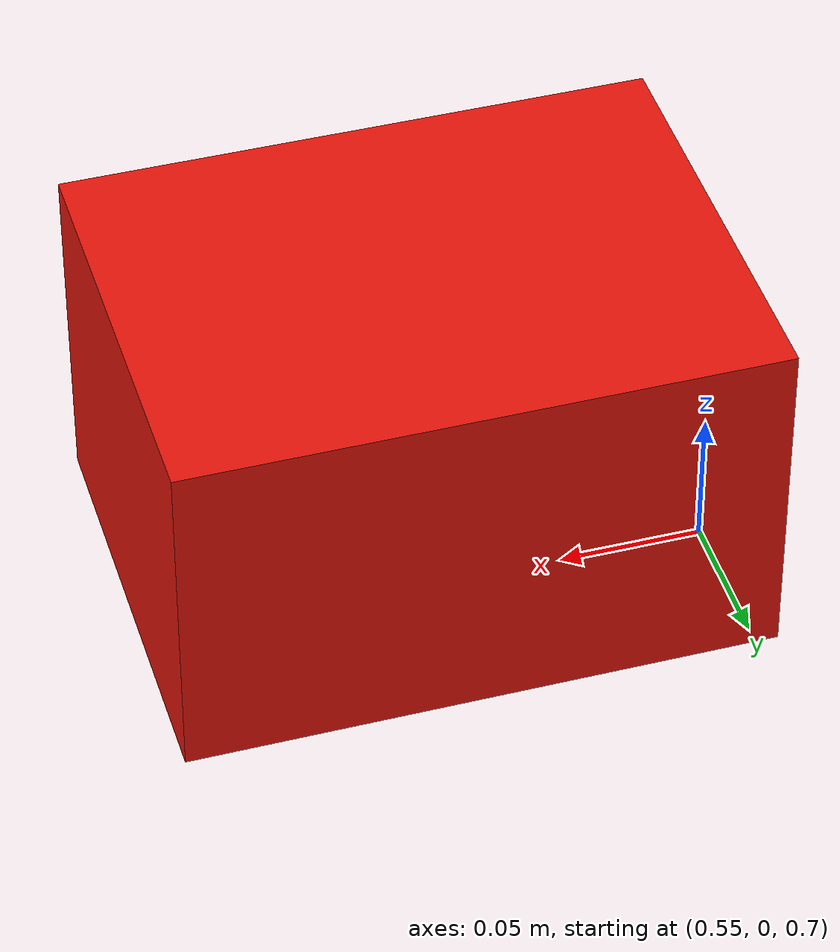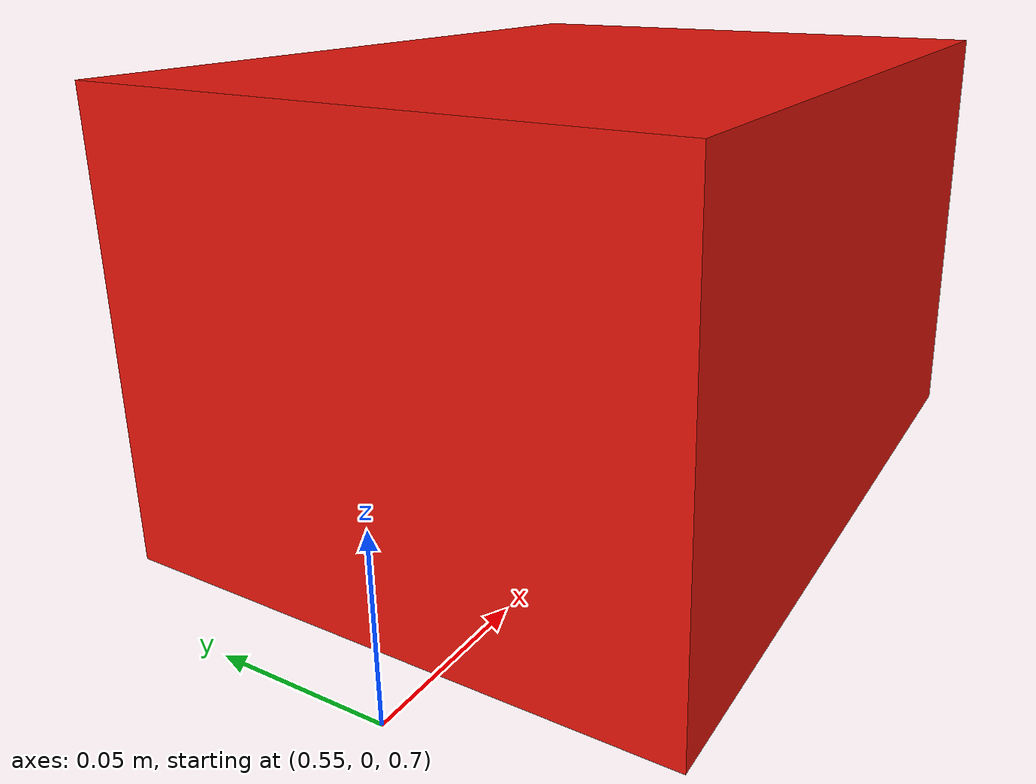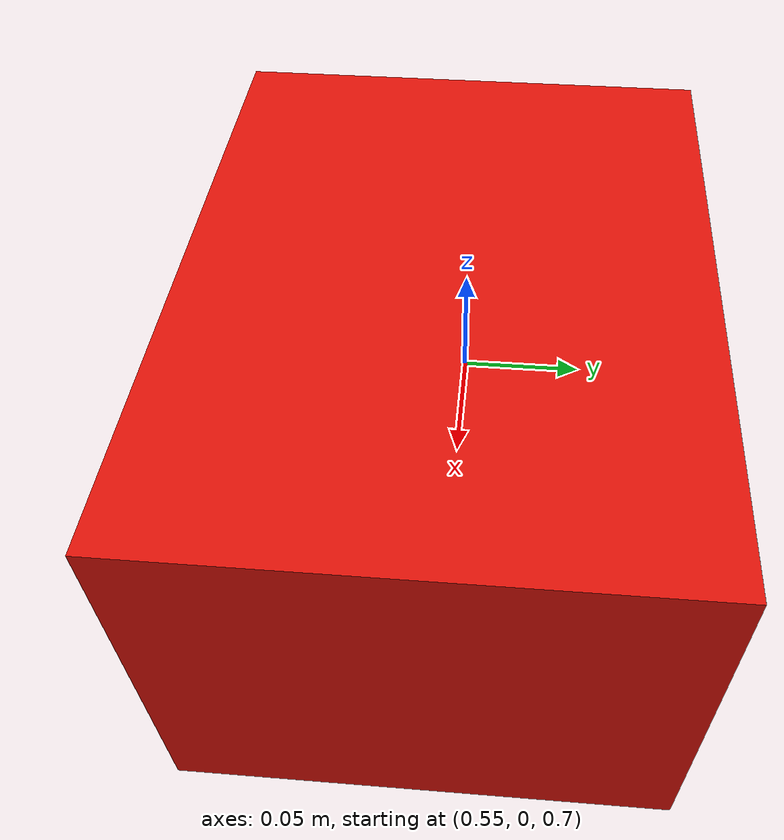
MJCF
<mujoco model="transport_box">
  <worldbody>
    <body name="box" pos="0.65 0 0.78">
      <freejoint name="box_freejoint"/>
      <inertial pos="0 0 0" mass="0.48" diaginertia="0.0020 0.0025 0.0030"/>
      <geom name="box_geom" type="box" size="0.10 0.075 0.06" rgba="0.9 0.08 0.04 1" condim="4"
            friction="1.15 0.03 0.002"/>
      <site name="box_center" pos="0 0 0" size="0.015" rgba="1 1 0 1"/>
    </body>
  </worldbody>
</mujoco>
